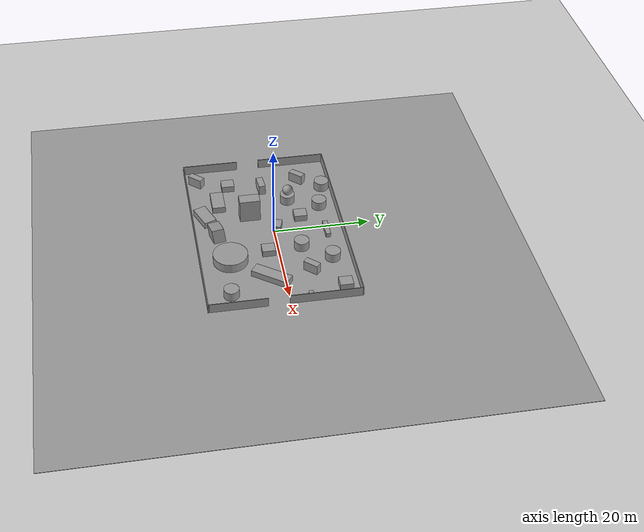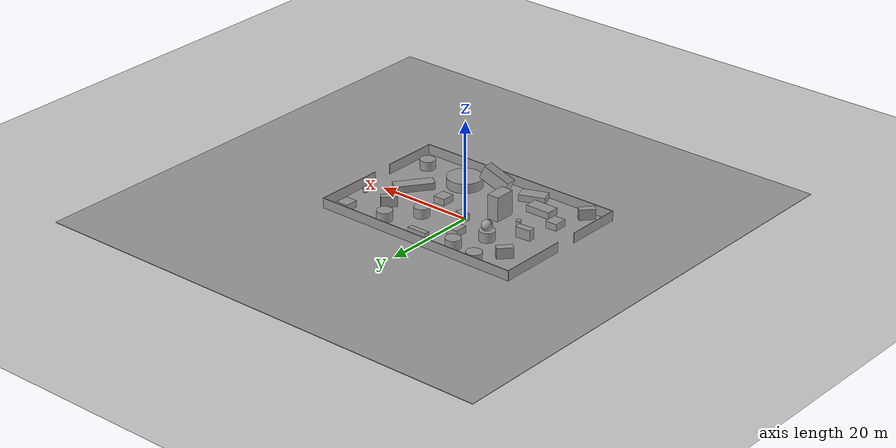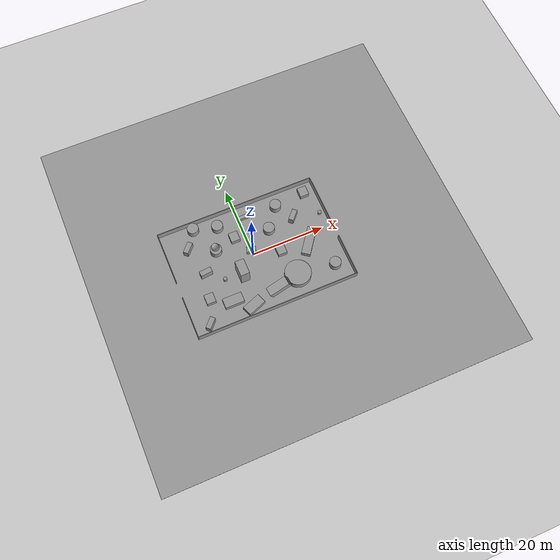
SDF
<sdf version="1.7">
 <world name="default">
  <scene>
   <sky><clouds><speed>12</speed></clouds></sky>
   <ambient>0.4 0.4 0.4 1</ambient>
   <background>0.7 0.7 0.7 1</background>
   <shadows>1</shadows>
  </scene>
  <light name="sun" type="directional">
   <pose>0 0 10 0 -0 0</pose>
   <diffuse>0.8 0.8 0.8 1</diffuse>
   <specular>0.2 0.2 0.2 1</specular>
   <attenuation>
    <range>1000</range>
    <constant>0.9</constant>
    <linear>0.01</linear>
    <quadratic>0.001</quadratic>
   </attenuation>
   <direction>-0.5 0.1 -0.9</direction>
   <spot><inner_angle>0</inner_angle><outer_angle>0</outer_angle><falloff>0</falloff></spot>
  </light>
  <model name="my_ground_plane">
   <static>1</static>
   <link name="link">
    <collision name="collision">
     <geometry><plane><normal>0 0 1</normal><size>100 100</size></plane></geometry>
     <surface><friction><ode><mu>100</mu><mu2>50</mu2></ode></friction></surface>
    </collision>
    <visual name="visual">
     <cast_shadows>0</cast_shadows>
     <geometry><plane><normal>0 0 1</normal><size>100 100</size></plane></geometry>
     <material>
      <script>
       <uri>model://my_ground_plane/materials/scripts</uri>
       <uri>model://my_ground_plane/materials/textures/</uri>
       <name>MyGroundPlane/Image</name>
      </script>
     </material>
    </visual>
   </link>
  </model>
  <atmosphere type="adiabatic"/>
  <physics name="default_physics" default="0" type="ode">
   <ode>
    <solver>
     <type>quick</type>
     <iters>50</iters>
     <sor>1</sor>
     <use_dynamic_moi_rescaling>0</use_dynamic_moi_rescaling>
    </solver>
    <constraints>
     <cfm>0</cfm>
     <erp>0.2</erp>
     <contact_max_correcting_vel>1000</contact_max_correcting_vel>
     <contact_surface_layer>0.001</contact_surface_layer>
    </constraints>
   </ode>
   <max_step_size>0.004</max_step_size>
   <real_time_factor>1</real_time_factor>
   <real_time_update_rate>250</real_time_update_rate>
   <gravity>0 0 -9.8066</gravity>
   <magnetic_field>6.0e-06 2.3e-05 -4.2e-05</magnetic_field>
  </physics>
  <spherical_coordinates>
   <surface_model>EARTH_WGS84</surface_model>
   <latitude_deg>0</latitude_deg>
   <longitude_deg>0</longitude_deg>
   <elevation>0</elevation>
   <heading_deg>0</heading_deg>
  </spherical_coordinates>
  <model name="boxworld">
   <pose>0 0 1.09423 0 -0 0</pose>
   <link name="link_3">
    <inertial>
     <mass>12.2384</mass>
     <inertia><ixx>10.929</ixx><ixy>0</ixy><ixz>0</ixz><iyy>9.61385</iyy><iyz>0</iyz><izz>13.4643</izz></inertia>
    </inertial>
    <pose>-15.234 -7.69159 -0.162787 0 -0 0</pose>
    <visual name="visual">
     <geometry><box><size>2.44054 2.6918 1.86289</size></box></geometry>
     <material>
      <lighting>1</lighting>
      <script><uri>file://media/materials/scripts/gazebo.material</uri><name>Gazebo/Grey</name></script>
      <shader type="pixel"/>
     </material>
    </visual>
    <collision name="collision">
     <geometry><box><size>2.44054 2.6918 1.86289</size></box></geometry>
     <surface>
      <friction>
       <ode><mu>1</mu><mu2>1</mu2><fdir1>0 0 0</fdir1><slip1>0</slip1><slip2>0</slip2></ode>
       <torsional>
        <coefficient>1</coefficient>
        <patch_radius>0</patch_radius>
        <surface_radius>0</surface_radius>
        <use_patch_radius>1</use_patch_radius>
        <ode><slip>0</slip></ode>
       </torsional>
      </friction>
      <bounce><restitution_coefficient>0</restitution_coefficient><threshold>1e+06</threshold></bounce>
      <contact>
       <collide_without_contact>0</collide_without_contact>
       <collide_without_contact_bitmask>1</collide_without_contact_bitmask>
       <collide_bitmask>1</collide_bitmask>
       <ode>
        <soft_cfm>0</soft_cfm>
        <soft_erp>0.2</soft_erp>
        <kp>1e+13</kp>
        <kd>1</kd>
        <max_vel>0.01</max_vel>
        <min_depth>0</min_depth>
       </ode>
       <bullet>
        <split_impulse>1</split_impulse>
        <split_impulse_penetration_threshold>-0.01</split_impulse_penetration_threshold>
        <soft_cfm>0</soft_cfm>
        <soft_erp>0.2</soft_erp>
        <kp>1e+13</kp>
        <kd>1</kd>
       </bullet>
      </contact>
     </surface>
    </collision>
   </link>
   <link name="link_3_clone">
    <inertial>
     <mass>12.2384</mass>
     <inertia><ixx>10.929</ixx><ixy>0</ixy><ixz>0</ixz><iyy>9.61385</iyy><iyz>0</iyz><izz>13.4643</izz></inertia>
    </inertial>
    <pose>-3.00574 6.07353 -0.162787 0 -0 0</pose>
    <visual name="visual">
     <geometry><box><size>2.44054 2.6918 1.86289</size></box></geometry>
     <material>
      <lighting>1</lighting>
      <script><uri>file://media/materials/scripts/gazebo.material</uri><name>Gazebo/Grey</name></script>
      <shader type="pixel"/>
     </material>
    </visual>
    <collision name="collision">
     <geometry><box><size>2.44054 2.6918 1.86289</size></box></geometry>
     <surface>
      <friction>
       <ode><mu>1</mu><mu2>1</mu2><fdir1>0 0 0</fdir1><slip1>0</slip1><slip2>0</slip2></ode>
       <torsional>
        <coefficient>1</coefficient>
        <patch_radius>0</patch_radius>
        <surface_radius>0</surface_radius>
        <use_patch_radius>1</use_patch_radius>
        <ode><slip>0</slip></ode>
       </torsional>
      </friction>
      <bounce><restitution_coefficient>0</restitution_coefficient><threshold>1e+06</threshold></bounce>
      <contact>
       <collide_without_contact>0</collide_without_contact>
       <collide_without_contact_bitmask>1</collide_without_contact_bitmask>
       <collide_bitmask>1</collide_bitmask>
       <ode>
        <soft_cfm>0</soft_cfm>
        <soft_erp>0.2</soft_erp>
        <kp>1e+13</kp>
        <kd>1</kd>
        <max_vel>0.01</max_vel>
        <min_depth>0</min_depth>
       </ode>
       <bullet>
        <split_impulse>1</split_impulse>
        <split_impulse_penetration_threshold>-0.01</split_impulse_penetration_threshold>
        <soft_cfm>0</soft_cfm>
        <soft_erp>0.2</soft_erp>
        <kp>1e+13</kp>
        <kd>1</kd>
       </bullet>
      </contact>
     </surface>
    </collision>
   </link>
   <link name="link_3_clone_0">
    <inertial>
     <mass>37.9067</mass>
     <inertia><ixx>128.058</ixx><ixy>0</ixy><ixz>0</ixz><iyy>123.985</iyy><iyz>0</iyz><izz>41.7037</izz></inertia>
    </inertial>
    <pose>2.22334 -12.1311 2.02429 -1.17864 0.076437 -1.45279</pose>
    <visual name="visual">
     <geometry><box><size>2.44054 2.6918 5.77003</size></box></geometry>
     <material>
      <lighting>1</lighting>
      <script><uri>file://media/materials/scripts/gazebo.material</uri><name>Gazebo/Grey</name></script>
      <shader type="pixel"/>
     </material>
    </visual>
    <collision name="collision">
     <geometry><box><size>2.44054 2.6918 5.77003</size></box></geometry>
     <surface>
      <friction>
       <ode><mu>1</mu><mu2>1</mu2><fdir1>0 0 0</fdir1><slip1>0</slip1><slip2>0</slip2></ode>
       <torsional>
        <coefficient>1</coefficient>
        <patch_radius>0</patch_radius>
        <surface_radius>0</surface_radius>
        <use_patch_radius>1</use_patch_radius>
        <ode><slip>0</slip></ode>
       </torsional>
      </friction>
      <bounce><restitution_coefficient>0</restitution_coefficient><threshold>1e+06</threshold></bounce>
      <contact>
       <collide_without_contact>0</collide_without_contact>
       <collide_without_contact_bitmask>1</collide_without_contact_bitmask>
       <collide_bitmask>1</collide_bitmask>
       <ode>
        <soft_cfm>0</soft_cfm>
        <soft_erp>0.2</soft_erp>
        <kp>1e+13</kp>
        <kd>1</kd>
        <max_vel>0.01</max_vel>
        <min_depth>0</min_depth>
       </ode>
       <bullet>
        <split_impulse>1</split_impulse>
        <split_impulse_penetration_threshold>-0.01</split_impulse_penetration_threshold>
        <soft_cfm>0</soft_cfm>
        <soft_erp>0.2</soft_erp>
        <kp>1e+13</kp>
        <kd>1</kd>
       </bullet>
      </contact>
     </surface>
    </collision>
   </link>
   <link name="link_3_clone_1">
    <inertial>
     <mass>12.2384</mass>
     <inertia><ixx>10.929</ixx><ixy>0</ixy><ixz>0</ixz><iyy>9.61385</iyy><iyz>0</iyz><izz>13.4643</izz></inertia>
    </inertial>
    <pose>19.2747 11.3116 -0.162787 0 -0 0</pose>
    <visual name="visual">
     <geometry><box><size>2.44054 2.6918 1.86289</size></box></geometry>
     <material>
      <lighting>1</lighting>
      <script><uri>file://media/materials/scripts/gazebo.material</uri><name>Gazebo/Grey</name></script>
      <shader type="pixel"/>
     </material>
    </visual>
    <collision name="collision">
     <geometry><box><size>2.44054 2.6918 1.86289</size></box></geometry>
     <surface>
      <friction>
       <ode><mu>1</mu><mu2>1</mu2><fdir1>0 0 0</fdir1><slip1>0</slip1><slip2>0</slip2></ode>
       <torsional>
        <coefficient>1</coefficient>
        <patch_radius>0</patch_radius>
        <surface_radius>0</surface_radius>
        <use_patch_radius>1</use_patch_radius>
        <ode><slip>0</slip></ode>
       </torsional>
      </friction>
      <bounce><restitution_coefficient>0</restitution_coefficient><threshold>1e+06</threshold></bounce>
      <contact>
       <collide_without_contact>0</collide_without_contact>
       <collide_without_contact_bitmask>1</collide_without_contact_bitmask>
       <collide_bitmask>1</collide_bitmask>
       <ode>
        <soft_cfm>0</soft_cfm>
        <soft_erp>0.2</soft_erp>
        <kp>1e+13</kp>
        <kd>1</kd>
        <max_vel>0.01</max_vel>
        <min_depth>0</min_depth>
       </ode>
       <bullet>
        <split_impulse>1</split_impulse>
        <split_impulse_penetration_threshold>-0.01</split_impulse_penetration_threshold>
        <soft_cfm>0</soft_cfm>
        <soft_erp>0.2</soft_erp>
        <kp>1e+13</kp>
        <kd>1</kd>
       </bullet>
      </contact>
     </surface>
    </collision>
   </link>
   <link name="link_3_clone_2">
    <inertial>
     <mass>12.2384</mass>
     <inertia><ixx>10.929</ixx><ixy>0</ixy><ixz>0</ixz><iyy>9.61385</iyy><iyz>0</iyz><izz>13.4643</izz></inertia>
    </inertial>
    <pose>7.03857 -2.20141 -0.162787 0 -0 0</pose>
    <visual name="visual">
     <geometry><box><size>2.44054 2.6918 1.86289</size></box></geometry>
     <material>
      <lighting>1</lighting>
      <script><uri>file://media/materials/scripts/gazebo.material</uri><name>Gazebo/Grey</name></script>
      <shader type="pixel"/>
     </material>
    </visual>
    <collision name="collision">
     <geometry><box><size>2.44054 2.6918 1.86289</size></box></geometry>
     <surface>
      <friction>
       <ode><mu>1</mu><mu2>1</mu2><fdir1>0 0 0</fdir1><slip1>0</slip1><slip2>0</slip2></ode>
       <torsional>
        <coefficient>1</coefficient>
        <patch_radius>0</patch_radius>
        <surface_radius>0</surface_radius>
        <use_patch_radius>1</use_patch_radius>
        <ode><slip>0</slip></ode>
       </torsional>
      </friction>
      <bounce><restitution_coefficient>0</restitution_coefficient><threshold>1e+06</threshold></bounce>
      <contact>
       <collide_without_contact>0</collide_without_contact>
       <collide_without_contact_bitmask>1</collide_without_contact_bitmask>
       <collide_bitmask>1</collide_bitmask>
       <ode>
        <soft_cfm>0</soft_cfm>
        <soft_erp>0.2</soft_erp>
        <kp>1e+13</kp>
        <kd>1</kd>
        <max_vel>0.01</max_vel>
        <min_depth>0</min_depth>
       </ode>
       <bullet>
        <split_impulse>1</split_impulse>
        <split_impulse_penetration_threshold>-0.01</split_impulse_penetration_threshold>
        <soft_cfm>0</soft_cfm>
        <soft_erp>0.2</soft_erp>
        <kp>1e+13</kp>
        <kd>1</kd>
       </bullet>
      </contact>
     </surface>
    </collision>
   </link>
   <link name="link_3_clone_3">
    <inertial>
     <mass>94.8322</mass>
     <inertia><ixx>802.066</ixx><ixy>0</ixy><ixz>0</ixz><iyy>706.05</iyy><iyz>0</iyz><izz>190.157</izz></inertia>
    </inertial>
    <pose>-4.78381 -4.35724 -0.162787 0 -0 0</pose>
    <visual name="visual">
     <geometry><box><size>2.44054 4.25513 9.13164</size></box></geometry>
     <material>
      <lighting>1</lighting>
      <script><uri>file://media/materials/scripts/gazebo.material</uri><name>Gazebo/Grey</name></script>
      <shader type="pixel"/>
     </material>
    </visual>
    <collision name="collision">
     <geometry><box><size>2.44054 4.25513 9.13164</size></box></geometry>
     <surface>
      <friction>
       <ode><mu>1</mu><mu2>1</mu2><fdir1>0 0 0</fdir1><slip1>0</slip1><slip2>0</slip2></ode>
       <torsional>
        <coefficient>1</coefficient>
        <patch_radius>0</patch_radius>
        <surface_radius>0</surface_radius>
        <use_patch_radius>1</use_patch_radius>
        <ode><slip>0</slip></ode>
       </torsional>
      </friction>
      <bounce><restitution_coefficient>0</restitution_coefficient><threshold>1e+06</threshold></bounce>
      <contact>
       <collide_without_contact>0</collide_without_contact>
       <collide_without_contact_bitmask>1</collide_without_contact_bitmask>
       <collide_bitmask>1</collide_bitmask>
       <ode>
        <soft_cfm>0</soft_cfm>
        <soft_erp>0.2</soft_erp>
        <kp>1e+13</kp>
        <kd>1</kd>
        <max_vel>0.01</max_vel>
        <min_depth>0</min_depth>
       </ode>
       <bullet>
        <split_impulse>1</split_impulse>
        <split_impulse_penetration_threshold>-0.01</split_impulse_penetration_threshold>
        <soft_cfm>0</soft_cfm>
        <soft_erp>0.2</soft_erp>
        <kp>1e+13</kp>
        <kd>1</kd>
       </bullet>
      </contact>
     </surface>
    </collision>
   </link>
   <link name="link_3_clone_4">
    <inertial>
     <mass>36.0257</mass>
     <inertia><ixx>198.91</ixx><ixy>0</ixy><ixz>0</ixz><iyy>28.2999</iyy><iyz>0</iyz><izz>206.373</izz></inertia>
    </inertial>
    <pose>14.8858 -2.72576 -0.162787 0 0 -0.632937</pose>
    <visual name="visual">
     <geometry><box><size>2.44054 7.92374 1.86289</size></box></geometry>
     <material>
      <lighting>1</lighting>
      <script><uri>file://media/materials/scripts/gazebo.material</uri><name>Gazebo/Grey</name></script>
      <shader type="pixel"/>
     </material>
    </visual>
    <collision name="collision">
     <geometry><box><size>2.44054 7.92374 1.86289</size></box></geometry>
     <surface>
      <friction>
       <ode><mu>1</mu><mu2>1</mu2><fdir1>0 0 0</fdir1><slip1>0</slip1><slip2>0</slip2></ode>
       <torsional>
        <coefficient>1</coefficient>
        <patch_radius>0</patch_radius>
        <surface_radius>0</surface_radius>
        <use_patch_radius>1</use_patch_radius>
        <ode><slip>0</slip></ode>
       </torsional>
      </friction>
      <bounce><restitution_coefficient>0</restitution_coefficient><threshold>1e+06</threshold></bounce>
      <contact>
       <collide_without_contact>0</collide_without_contact>
       <collide_without_contact_bitmask>1</collide_without_contact_bitmask>
       <collide_bitmask>1</collide_bitmask>
       <ode>
        <soft_cfm>0</soft_cfm>
        <soft_erp>0.2</soft_erp>
        <kp>1e+13</kp>
        <kd>1</kd>
        <max_vel>0.01</max_vel>
        <min_depth>0</min_depth>
       </ode>
       <bullet>
        <split_impulse>1</split_impulse>
        <split_impulse_penetration_threshold>-0.01</split_impulse_penetration_threshold>
        <soft_cfm>0</soft_cfm>
        <soft_erp>0.2</soft_erp>
        <kp>1e+13</kp>
        <kd>1</kd>
       </bullet>
      </contact>
     </surface>
    </collision>
   </link>
   <link name="link_3_clone_5">
    <inertial>
     <mass>26.0923</mass>
     <inertia><ixx>23.3007</ixx><ixy>0</ixy><ixz>0</ixz><iyy>66.4136</iyy><iyz>0</iyz><izz>74.6227</izz></inertia>
    </inertial>
    <pose>-9.84642 -10.4814 -0.162787 0 -0 0</pose>
    <visual name="visual">
     <geometry><box><size>5.20323 2.6918 1.86289</size></box></geometry>
     <material>
      <lighting>1</lighting>
      <script><uri>file://media/materials/scripts/gazebo.material</uri><name>Gazebo/Grey</name></script>
      <shader type="pixel"/>
     </material>
    </visual>
    <collision name="collision">
     <geometry><box><size>5.20323 2.6918 1.86289</size></box></geometry>
     <surface>
      <friction>
       <ode><mu>1</mu><mu2>1</mu2><fdir1>0 0 0</fdir1><slip1>0</slip1><slip2>0</slip2></ode>
       <torsional>
        <coefficient>1</coefficient>
        <patch_radius>0</patch_radius>
        <surface_radius>0</surface_radius>
        <use_patch_radius>1</use_patch_radius>
        <ode><slip>0</slip></ode>
       </torsional>
      </friction>
      <bounce><restitution_coefficient>0</restitution_coefficient><threshold>1e+06</threshold></bounce>
      <contact>
       <collide_without_contact>0</collide_without_contact>
       <collide_without_contact_bitmask>1</collide_without_contact_bitmask>
       <collide_bitmask>1</collide_bitmask>
       <ode>
        <soft_cfm>0</soft_cfm>
        <soft_erp>0.2</soft_erp>
        <kp>1e+13</kp>
        <kd>1</kd>
        <max_vel>0.01</max_vel>
        <min_depth>0</min_depth>
       </ode>
       <bullet>
        <split_impulse>1</split_impulse>
        <split_impulse_penetration_threshold>-0.01</split_impulse_penetration_threshold>
        <soft_cfm>0</soft_cfm>
        <soft_erp>0.2</soft_erp>
        <kp>1e+13</kp>
        <kd>1</kd>
       </bullet>
      </contact>
     </surface>
    </collision>
   </link>
   <link name="link_3_clone_5_clone">
    <inertial>
     <mass>26.0923</mass>
     <inertia><ixx>23.3007</ixx><ixy>0</ixy><ixz>0</ixz><iyy>66.4136</iyy><iyz>0</iyz><izz>74.6227</izz></inertia>
    </inertial>
    <pose>-5.39487 -13.6975 -0.162787 0 -0 0.368475</pose>
    <visual name="visual">
     <geometry><box><size>5.20323 2.6918 1.86289</size></box></geometry>
     <material>
      <lighting>1</lighting>
      <script><uri>file://media/materials/scripts/gazebo.material</uri><name>Gazebo/Grey</name></script>
      <shader type="pixel"/>
     </material>
    </visual>
    <collision name="collision">
     <geometry><box><size>5.20323 2.6918 1.86289</size></box></geometry>
     <surface>
      <friction>
       <ode><mu>1</mu><mu2>1</mu2><fdir1>0 0 0</fdir1><slip1>0</slip1><slip2>0</slip2></ode>
       <torsional>
        <coefficient>1</coefficient>
        <patch_radius>0</patch_radius>
        <surface_radius>0</surface_radius>
        <use_patch_radius>1</use_patch_radius>
        <ode><slip>0</slip></ode>
       </torsional>
      </friction>
      <bounce><restitution_coefficient>0</restitution_coefficient><threshold>1e+06</threshold></bounce>
      <contact>
       <collide_without_contact>0</collide_without_contact>
       <collide_without_contact_bitmask>1</collide_without_contact_bitmask>
       <collide_bitmask>1</collide_bitmask>
       <ode>
        <soft_cfm>0</soft_cfm>
        <soft_erp>0.2</soft_erp>
        <kp>1e+13</kp>
        <kd>1</kd>
        <max_vel>0.01</max_vel>
        <min_depth>0</min_depth>
       </ode>
       <bullet>
        <split_impulse>1</split_impulse>
        <split_impulse_penetration_threshold>-0.01</split_impulse_penetration_threshold>
        <soft_cfm>0</soft_cfm>
        <soft_erp>0.2</soft_erp>
        <kp>1e+13</kp>
        <kd>1</kd>
       </bullet>
      </contact>
     </surface>
    </collision>
   </link>
   <link name="link_3_clone_clone">
    <inertial>
     <mass>6.77811</mass>
     <inertia><ixx>3.21561</ixx><ixy>0</ixy><ixz>0</ixz><iyy>5.32454</iyy><iyz>0</iyz><izz>4.61974</izz></inertia>
    </inertial>
    <pose>-0.21055 0.914889 -0.162787 0 0 -0.310202</pose>
    <visual name="visual">
     <geometry><box><size>2.44054 1.49083 1.86289</size></box></geometry>
     <material>
      <lighting>1</lighting>
      <script><uri>file://media/materials/scripts/gazebo.material</uri><name>Gazebo/Grey</name></script>
      <shader type="pixel"/>
     </material>
    </visual>
    <collision name="collision">
     <geometry><box><size>2.44054 1.49083 1.86289</size></box></geometry>
     <surface>
      <friction>
       <ode><mu>1</mu><mu2>1</mu2><fdir1>0 0 0</fdir1><slip1>0</slip1><slip2>0</slip2></ode>
       <torsional>
        <coefficient>1</coefficient>
        <patch_radius>0</patch_radius>
        <surface_radius>0</surface_radius>
        <use_patch_radius>1</use_patch_radius>
        <ode><slip>0</slip></ode>
       </torsional>
      </friction>
      <bounce><restitution_coefficient>0</restitution_coefficient><threshold>1e+06</threshold></bounce>
      <contact>
       <collide_without_contact>0</collide_without_contact>
       <collide_without_contact_bitmask>1</collide_without_contact_bitmask>
       <collide_bitmask>1</collide_bitmask>
       <ode>
        <soft_cfm>0</soft_cfm>
        <soft_erp>0.2</soft_erp>
        <kp>1e+13</kp>
        <kd>1</kd>
        <max_vel>0.01</max_vel>
        <min_depth>0</min_depth>
       </ode>
       <bullet>
        <split_impulse>1</split_impulse>
        <split_impulse_penetration_threshold>-0.01</split_impulse_penetration_threshold>
        <soft_cfm>0</soft_cfm>
        <soft_erp>0.2</soft_erp>
        <kp>1e+13</kp>
        <kd>1</kd>
       </bullet>
      </contact>
     </surface>
    </collision>
   </link>
   <link name="link_4">
    <inertial>
     <mass>28.7016</mass>
     <inertia><ixx>38.922</ixx><ixy>0</ixy><ixz>0</ixz><iyy>38.922</iyy><iyz>0</iyz><izz>34.0219</izz></inertia>
    </inertial>
    <pose>-8.89013 4.32744 -0.162787 0 -0 0</pose>
    <visual name="visual">
     <geometry><cylinder><radius>1.53972</radius><length>3.02669</length></cylinder></geometry>
     <material>
      <lighting>1</lighting>
      <script><uri>file://media/materials/scripts/gazebo.material</uri><name>Gazebo/Grey</name></script>
      <shader type="pixel"/>
     </material>
    </visual>
    <collision name="collision">
     <geometry><cylinder><radius>1.53972</radius><length>3.02669</length></cylinder></geometry>
     <surface>
      <friction>
       <ode><mu>1</mu><mu2>1</mu2><fdir1>0 0 0</fdir1><slip1>0</slip1><slip2>0</slip2></ode>
       <torsional>
        <coefficient>1</coefficient>
        <patch_radius>0</patch_radius>
        <surface_radius>0</surface_radius>
        <use_patch_radius>1</use_patch_radius>
        <ode><slip>0</slip></ode>
       </torsional>
      </friction>
      <bounce><restitution_coefficient>0</restitution_coefficient><threshold>1e+06</threshold></bounce>
      <contact>
       <collide_without_contact>0</collide_without_contact>
       <collide_without_contact_bitmask>1</collide_without_contact_bitmask>
       <collide_bitmask>1</collide_bitmask>
       <ode>
        <soft_cfm>0</soft_cfm>
        <soft_erp>0.2</soft_erp>
        <kp>1e+13</kp>
        <kd>1</kd>
        <max_vel>0.01</max_vel>
        <min_depth>0</min_depth>
       </ode>
       <bullet>
        <split_impulse>1</split_impulse>
        <split_impulse_penetration_threshold>-0.01</split_impulse_penetration_threshold>
        <soft_cfm>0</soft_cfm>
        <soft_erp>0.2</soft_erp>
        <kp>1e+13</kp>
        <kd>1</kd>
       </bullet>
      </contact>
     </surface>
    </collision>
   </link>
   <link name="link_4_clone">
    <inertial>
     <mass>28.7016</mass>
     <inertia><ixx>38.922</ixx><ixy>0</ixy><ixz>0</ixz><iyy>38.922</iyy><iyz>0</iyz><izz>34.0219</izz></inertia>
    </inertial>
    <pose>18.677 -11.2451 -0.162787 0 -0 0</pose>
    <visual name="visual">
     <geometry><cylinder><radius>1.53972</radius><length>3.02669</length></cylinder></geometry>
     <material>
      <lighting>1</lighting>
      <script><uri>file://media/materials/scripts/gazebo.material</uri><name>Gazebo/Grey</name></script>
      <shader type="pixel"/>
     </material>
    </visual>
    <collision name="collision">
     <geometry><cylinder><radius>1.53972</radius><length>3.02669</length></cylinder></geometry>
     <surface>
      <friction>
       <ode><mu>1</mu><mu2>1</mu2><fdir1>0 0 0</fdir1><slip1>0</slip1><slip2>0</slip2></ode>
       <torsional>
        <coefficient>1</coefficient>
        <patch_radius>0</patch_radius>
        <surface_radius>0</surface_radius>
        <use_patch_radius>1</use_patch_radius>
        <ode><slip>0</slip></ode>
       </torsional>
      </friction>
      <bounce><restitution_coefficient>0</restitution_coefficient><threshold>1e+06</threshold></bounce>
      <contact>
       <collide_without_contact>0</collide_without_contact>
       <collide_without_contact_bitmask>1</collide_without_contact_bitmask>
       <collide_bitmask>1</collide_bitmask>
       <ode>
        <soft_cfm>0</soft_cfm>
        <soft_erp>0.2</soft_erp>
        <kp>1e+13</kp>
        <kd>1</kd>
        <max_vel>0.01</max_vel>
        <min_depth>0</min_depth>
       </ode>
       <bullet>
        <split_impulse>1</split_impulse>
        <split_impulse_penetration_threshold>-0.01</split_impulse_penetration_threshold>
        <soft_cfm>0</soft_cfm>
        <soft_erp>0.2</soft_erp>
        <kp>1e+13</kp>
        <kd>1</kd>
       </bullet>
      </contact>
     </surface>
    </collision>
   </link>
   <link name="link_4_clone_0">
    <inertial>
     <mass>28.7016</mass>
     <inertia><ixx>38.922</ixx><ixy>0</ixy><ixz>0</ixz><iyy>38.922</iyy><iyz>0</iyz><izz>34.0219</izz></inertia>
    </inertial>
    <pose>6.44948 4.7317 -0.162787 0 -0 0</pose>
    <visual name="visual">
     <geometry><cylinder><radius>1.53972</radius><length>3.02669</length></cylinder></geometry>
     <material>
      <lighting>1</lighting>
      <script><uri>file://media/materials/scripts/gazebo.material</uri><name>Gazebo/Grey</name></script>
      <shader type="pixel"/>
     </material>
    </visual>
    <collision name="collision">
     <geometry><cylinder><radius>1.53972</radius><length>3.02669</length></cylinder></geometry>
     <surface>
      <friction>
       <ode><mu>1</mu><mu2>1</mu2><fdir1>0 0 0</fdir1><slip1>0</slip1><slip2>0</slip2></ode>
       <torsional>
        <coefficient>1</coefficient>
        <patch_radius>0</patch_radius>
        <surface_radius>0</surface_radius>
        <use_patch_radius>1</use_patch_radius>
        <ode><slip>0</slip></ode>
       </torsional>
      </friction>
      <bounce><restitution_coefficient>0</restitution_coefficient><threshold>1e+06</threshold></bounce>
      <contact>
       <collide_without_contact>0</collide_without_contact>
       <collide_without_contact_bitmask>1</collide_without_contact_bitmask>
       <collide_bitmask>1</collide_bitmask>
       <ode>
        <soft_cfm>0</soft_cfm>
        <soft_erp>0.2</soft_erp>
        <kp>1e+13</kp>
        <kd>1</kd>
        <max_vel>0.01</max_vel>
        <min_depth>0</min_depth>
       </ode>
       <bullet>
        <split_impulse>1</split_impulse>
        <split_impulse_penetration_threshold>-0.01</split_impulse_penetration_threshold>
        <soft_cfm>0</soft_cfm>
        <soft_erp>0.2</soft_erp>
        <kp>1e+13</kp>
        <kd>1</kd>
       </bullet>
      </contact>
     </surface>
    </collision>
   </link>
   <link name="link_4_clone_1">
    <inertial>
     <mass>28.7016</mass>
     <inertia><ixx>38.922</ixx><ixy>0</ixy><ixz>0</ixz><iyy>38.922</iyy><iyz>0</iyz><izz>34.0219</izz></inertia>
    </inertial>
    <pose>-12.3911 12.34 -0.162787 0 -0 0</pose>
    <visual name="visual">
     <geometry><cylinder><radius>1.53972</radius><length>3.02669</length></cylinder></geometry>
     <material>
      <lighting>1</lighting>
      <script><uri>file://media/materials/scripts/gazebo.material</uri><name>Gazebo/Grey</name></script>
      <shader type="pixel"/>
     </material>
    </visual>
    <collision name="collision">
     <geometry><cylinder><radius>1.53972</radius><length>3.02669</length></cylinder></geometry>
     <surface>
      <friction>
       <ode><mu>1</mu><mu2>1</mu2><fdir1>0 0 0</fdir1><slip1>0</slip1><slip2>0</slip2></ode>
       <torsional>
        <coefficient>1</coefficient>
        <patch_radius>0</patch_radius>
        <surface_radius>0</surface_radius>
        <use_patch_radius>1</use_patch_radius>
        <ode><slip>0</slip></ode>
       </torsional>
      </friction>
      <bounce><restitution_coefficient>0</restitution_coefficient><threshold>1e+06</threshold></bounce>
      <contact>
       <collide_without_contact>0</collide_without_contact>
       <collide_without_contact_bitmask>1</collide_without_contact_bitmask>
       <collide_bitmask>1</collide_bitmask>
       <ode>
        <soft_cfm>0</soft_cfm>
        <soft_erp>0.2</soft_erp>
        <kp>1e+13</kp>
        <kd>1</kd>
        <max_vel>0.01</max_vel>
        <min_depth>0</min_depth>
       </ode>
       <bullet>
        <split_impulse>1</split_impulse>
        <split_impulse_penetration_threshold>-0.01</split_impulse_penetration_threshold>
        <soft_cfm>0</soft_cfm>
        <soft_erp>0.2</soft_erp>
        <kp>1e+13</kp>
        <kd>1</kd>
       </bullet>
      </contact>
     </surface>
    </collision>
   </link>
   <link name="link_4_clone_2">
    <inertial>
     <mass>28.7016</mass>
     <inertia><ixx>38.922</ixx><ixy>0</ixy><ixz>0</ixz><iyy>38.922</iyy><iyz>0</iyz><izz>34.0219</izz></inertia>
    </inertial>
    <pose>-6.06344 10.6507 -0.162787 0 -0 0</pose>
    <visual name="visual">
     <geometry><cylinder><radius>1.53972</radius><length>3.02669</length></cylinder></geometry>
     <material>
      <lighting>1</lighting>
      <script><uri>file://media/materials/scripts/gazebo.material</uri><name>Gazebo/Grey</name></script>
      <shader type="pixel"/>
     </material>
    </visual>
    <collision name="collision">
     <geometry><cylinder><radius>1.53972</radius><length>3.02669</length></cylinder></geometry>
     <surface>
      <friction>
       <ode><mu>1</mu><mu2>1</mu2><fdir1>0 0 0</fdir1><slip1>0</slip1><slip2>0</slip2></ode>
       <torsional>
        <coefficient>1</coefficient>
        <patch_radius>0</patch_radius>
        <surface_radius>0</surface_radius>
        <use_patch_radius>1</use_patch_radius>
        <ode><slip>0</slip></ode>
       </torsional>
      </friction>
      <bounce><restitution_coefficient>0</restitution_coefficient><threshold>1e+06</threshold></bounce>
      <contact>
       <collide_without_contact>0</collide_without_contact>
       <collide_without_contact_bitmask>1</collide_without_contact_bitmask>
       <collide_bitmask>1</collide_bitmask>
       <ode>
        <soft_cfm>0</soft_cfm>
        <soft_erp>0.2</soft_erp>
        <kp>1e+13</kp>
        <kd>1</kd>
        <max_vel>0.01</max_vel>
        <min_depth>0</min_depth>
       </ode>
       <bullet>
        <split_impulse>1</split_impulse>
        <split_impulse_penetration_threshold>-0.01</split_impulse_penetration_threshold>
        <soft_cfm>0</soft_cfm>
        <soft_erp>0.2</soft_erp>
        <kp>1e+13</kp>
        <kd>1</kd>
       </bullet>
      </contact>
     </surface>
    </collision>
   </link>
   <link name="link_4_clone_3">
    <inertial>
     <mass>28.7016</mass>
     <inertia><ixx>38.922</ixx><ixy>0</ixy><ixz>0</ixz><iyy>38.922</iyy><iyz>0</iyz><izz>34.0219</izz></inertia>
    </inertial>
    <pose>10.6973 10.364 -0.162787 0 -0 0</pose>
    <visual name="visual">
     <geometry><cylinder><radius>1.53972</radius><length>3.02669</length></cylinder></geometry>
     <material>
      <lighting>1</lighting>
      <script><uri>file://media/materials/scripts/gazebo.material</uri><name>Gazebo/Grey</name></script>
      <shader type="pixel"/>
     </material>
    </visual>
    <collision name="collision">
     <geometry><cylinder><radius>1.53972</radius><length>3.02669</length></cylinder></geometry>
     <surface>
      <friction>
       <ode><mu>1</mu><mu2>1</mu2><fdir1>0 0 0</fdir1><slip1>0</slip1><slip2>0</slip2></ode>
       <torsional>
        <coefficient>1</coefficient>
        <patch_radius>0</patch_radius>
        <surface_radius>0</surface_radius>
        <use_patch_radius>1</use_patch_radius>
        <ode><slip>0</slip></ode>
       </torsional>
      </friction>
      <bounce><restitution_coefficient>0</restitution_coefficient><threshold>1e+06</threshold></bounce>
      <contact>
       <collide_without_contact>0</collide_without_contact>
       <collide_without_contact_bitmask>1</collide_without_contact_bitmask>
       <collide_bitmask>1</collide_bitmask>
       <ode>
        <soft_cfm>0</soft_cfm>
        <soft_erp>0.2</soft_erp>
        <kp>1e+13</kp>
        <kd>1</kd>
        <max_vel>0.01</max_vel>
        <min_depth>0</min_depth>
       </ode>
       <bullet>
        <split_impulse>1</split_impulse>
        <split_impulse_penetration_threshold>-0.01</split_impulse_penetration_threshold>
        <soft_cfm>0</soft_cfm>
        <soft_erp>0.2</soft_erp>
        <kp>1e+13</kp>
        <kd>1</kd>
       </bullet>
      </contact>
     </surface>
    </collision>
   </link>
   <link name="link_4_clone_4">
    <inertial>
     <mass>151.393</mass>
     <inertia><ixx>588.869</ixx><ixy>0</ixy><ixz>0</ixz><iyy>588.869</iyy><iyz>0</iyz><izz>946.59</izz></inertia>
    </inertial>
    <pose>8.43797 -10.1197 -0.162787 0 -0 0</pose>
    <visual name="visual">
     <geometry><cylinder><radius>3.53625</radius><length>3.02669</length></cylinder></geometry>
     <material>
      <lighting>1</lighting>
      <script><uri>file://media/materials/scripts/gazebo.material</uri><name>Gazebo/Grey</name></script>
      <shader type="pixel"/>
     </material>
    </visual>
    <collision name="collision">
     <geometry><cylinder><radius>3.53625</radius><length>3.02669</length></cylinder></geometry>
     <surface>
      <friction>
       <ode><mu>1</mu><mu2>1</mu2><fdir1>0 0 0</fdir1><slip1>0</slip1><slip2>0</slip2></ode>
       <torsional>
        <coefficient>1</coefficient>
        <patch_radius>0</patch_radius>
        <surface_radius>0</surface_radius>
        <use_patch_radius>1</use_patch_radius>
        <ode><slip>0</slip></ode>
       </torsional>
      </friction>
      <bounce><restitution_coefficient>0</restitution_coefficient><threshold>1e+06</threshold></bounce>
      <contact>
       <collide_without_contact>0</collide_without_contact>
       <collide_without_contact_bitmask>1</collide_without_contact_bitmask>
       <collide_bitmask>1</collide_bitmask>
       <ode>
        <soft_cfm>0</soft_cfm>
        <soft_erp>0.2</soft_erp>
        <kp>1e+13</kp>
        <kd>1</kd>
        <max_vel>0.01</max_vel>
        <min_depth>0</min_depth>
       </ode>
       <bullet>
        <split_impulse>1</split_impulse>
        <split_impulse_penetration_threshold>-0.01</split_impulse_penetration_threshold>
        <soft_cfm>0</soft_cfm>
        <soft_erp>0.2</soft_erp>
        <kp>1e+13</kp>
        <kd>1</kd>
       </bullet>
      </contact>
     </surface>
    </collision>
   </link>
   <link name="link_5">
    <inertial>
     <mass>10.2536</mass>
     <inertia><ixx>4.83938</ixx><ixy>0</ixy><ixz>0</ixz><iyy>4.83938</iyy><iyz>0</iyz><izz>4.83938</izz></inertia>
    </inertial>
    <pose>-8.88559 4.41587 2.38259 0 -0 0</pose>
    <visual name="visual">
     <geometry><sphere><radius>1.08624</radius></sphere></geometry>
     <material>
      <lighting>1</lighting>
      <script><uri>file://media/materials/scripts/gazebo.material</uri><name>Gazebo/Grey</name></script>
      <shader type="pixel"/>
     </material>
    </visual>
    <collision name="collision">
     <geometry><sphere><radius>1.08624</radius></sphere></geometry>
     <surface>
      <friction>
       <ode><mu>1</mu><mu2>1</mu2><fdir1>0 0 0</fdir1><slip1>0</slip1><slip2>0</slip2></ode>
       <torsional>
        <coefficient>1</coefficient>
        <patch_radius>0</patch_radius>
        <surface_radius>0</surface_radius>
        <use_patch_radius>1</use_patch_radius>
        <ode><slip>0</slip></ode>
       </torsional>
      </friction>
      <bounce><restitution_coefficient>0</restitution_coefficient><threshold>1e+06</threshold></bounce>
      <contact>
       <collide_without_contact>0</collide_without_contact>
       <collide_without_contact_bitmask>1</collide_without_contact_bitmask>
       <collide_bitmask>1</collide_bitmask>
       <ode>
        <soft_cfm>0</soft_cfm>
        <soft_erp>0.2</soft_erp>
        <kp>1e+13</kp>
        <kd>1</kd>
        <max_vel>0.01</max_vel>
        <min_depth>0</min_depth>
       </ode>
       <bullet>
        <split_impulse>1</split_impulse>
        <split_impulse_penetration_threshold>-0.01</split_impulse_penetration_threshold>
        <soft_cfm>0</soft_cfm>
        <soft_erp>0.2</soft_erp>
        <kp>1e+13</kp>
        <kd>1</kd>
       </bullet>
      </contact>
     </surface>
    </collision>
   </link>
   <link name="link_6">
    <inertial>
     <mass>4.24242</mass>
     <inertia><ixx>0.70707</ixx><ixy>0</ixy><ixz>0</ixz><iyy>6.71651</iyy><iyz>0</iyz><izz>6.71651</izz></inertia>
    </inertial>
    <pose>2.13448 10.747 -0.162787 0 -0 0</pose>
    <visual name="visual">
     <geometry><box><size>4.24242 1 1</size></box></geometry>
     <material>
      <lighting>1</lighting>
      <script><uri>file://media/materials/scripts/gazebo.material</uri><name>Gazebo/Grey</name></script>
      <shader type="pixel"/>
     </material>
    </visual>
    <collision name="collision">
     <geometry><box><size>4.24242 1 1</size></box></geometry>
     <surface>
      <friction>
       <ode><mu>1</mu><mu2>1</mu2><fdir1>0 0 0</fdir1><slip1>0</slip1><slip2>0</slip2></ode>
       <torsional>
        <coefficient>1</coefficient>
        <patch_radius>0</patch_radius>
        <surface_radius>0</surface_radius>
        <use_patch_radius>1</use_patch_radius>
        <ode><slip>0</slip></ode>
       </torsional>
      </friction>
      <bounce><restitution_coefficient>0</restitution_coefficient><threshold>1e+06</threshold></bounce>
      <contact>
       <collide_without_contact>0</collide_without_contact>
       <collide_without_contact_bitmask>1</collide_without_contact_bitmask>
       <collide_bitmask>1</collide_bitmask>
       <ode>
        <soft_cfm>0</soft_cfm>
        <soft_erp>0.2</soft_erp>
        <kp>1e+13</kp>
        <kd>1</kd>
        <max_vel>0.01</max_vel>
        <min_depth>0</min_depth>
       </ode>
       <bullet>
        <split_impulse>1</split_impulse>
        <split_impulse_penetration_threshold>-0.01</split_impulse_penetration_threshold>
        <soft_cfm>0</soft_cfm>
        <soft_erp>0.2</soft_erp>
        <kp>1e+13</kp>
        <kd>1</kd>
       </bullet>
      </contact>
     </surface>
    </collision>
   </link>
   <link name="link_7">
    <inertial>
     <mass>14.7957</mass>
     <inertia><ixx>16.4388</ixx><ixy>0</ixy><ixz>0</ixz><iyy>26.5114</iyy><iyz>0</iyz><izz>14.7619</izz></inertia>
    </inertial>
    <pose>-15.5379 7.53388 -0.162787 0 -0 0.826842</pose>
    <visual name="visual">
     <geometry><box><size>3.17349 1.37898 3.38098</size></box></geometry>
     <material>
      <lighting>1</lighting>
      <script><uri>file://media/materials/scripts/gazebo.material</uri><name>Gazebo/Grey</name></script>
      <shader type="pixel"/>
     </material>
    </visual>
    <collision name="collision">
     <geometry><box><size>3.17349 1.37898 3.38098</size></box></geometry>
     <surface>
      <friction>
       <ode><mu>1</mu><mu2>1</mu2><fdir1>0 0 0</fdir1><slip1>0</slip1><slip2>0</slip2></ode>
       <torsional>
        <coefficient>1</coefficient>
        <patch_radius>0</patch_radius>
        <surface_radius>0</surface_radius>
        <use_patch_radius>1</use_patch_radius>
        <ode><slip>0</slip></ode>
       </torsional>
      </friction>
      <bounce><restitution_coefficient>0</restitution_coefficient><threshold>1e+06</threshold></bounce>
      <contact>
       <collide_without_contact>0</collide_without_contact>
       <collide_without_contact_bitmask>1</collide_without_contact_bitmask>
       <collide_bitmask>1</collide_bitmask>
       <ode>
        <soft_cfm>0</soft_cfm>
        <soft_erp>0.2</soft_erp>
        <kp>1e+13</kp>
        <kd>1</kd>
        <max_vel>0.01</max_vel>
        <min_depth>0</min_depth>
       </ode>
       <bullet>
        <split_impulse>1</split_impulse>
        <split_impulse_penetration_threshold>-0.01</split_impulse_penetration_threshold>
        <soft_cfm>0</soft_cfm>
        <soft_erp>0.2</soft_erp>
        <kp>1e+13</kp>
        <kd>1</kd>
       </bullet>
      </contact>
     </surface>
    </collision>
   </link>
   <link name="link_7_clone">
    <inertial>
     <mass>14.7957</mass>
     <inertia><ixx>16.4388</ixx><ixy>0</ixy><ixz>0</ixz><iyy>26.5114</iyy><iyz>0</iyz><izz>14.7619</izz></inertia>
    </inertial>
    <pose>-17.5295 -14.1669 -0.162787 0 -0 0.826842</pose>
    <visual name="visual">
     <geometry><box><size>3.17349 1.37898 3.38098</size></box></geometry>
     <material>
      <lighting>1</lighting>
      <script><uri>file://media/materials/scripts/gazebo.material</uri><name>Gazebo/Grey</name></script>
      <shader type="pixel"/>
     </material>
    </visual>
    <collision name="collision">
     <geometry><box><size>3.17349 1.37898 3.38098</size></box></geometry>
     <surface>
      <friction>
       <ode><mu>1</mu><mu2>1</mu2><fdir1>0 0 0</fdir1><slip1>0</slip1><slip2>0</slip2></ode>
       <torsional>
        <coefficient>1</coefficient>
        <patch_radius>0</patch_radius>
        <surface_radius>0</surface_radius>
        <use_patch_radius>1</use_patch_radius>
        <ode><slip>0</slip></ode>
       </torsional>
      </friction>
      <bounce><restitution_coefficient>0</restitution_coefficient><threshold>1e+06</threshold></bounce>
      <contact>
       <collide_without_contact>0</collide_without_contact>
       <collide_without_contact_bitmask>1</collide_without_contact_bitmask>
       <collide_bitmask>1</collide_bitmask>
       <ode>
        <soft_cfm>0</soft_cfm>
        <soft_erp>0.2</soft_erp>
        <kp>1e+13</kp>
        <kd>1</kd>
        <max_vel>0.01</max_vel>
        <min_depth>0</min_depth>
       </ode>
       <bullet>
        <split_impulse>1</split_impulse>
        <split_impulse_penetration_threshold>-0.01</split_impulse_penetration_threshold>
        <soft_cfm>0</soft_cfm>
        <soft_erp>0.2</soft_erp>
        <kp>1e+13</kp>
        <kd>1</kd>
       </bullet>
      </contact>
     </surface>
    </collision>
   </link>
   <link name="link_7_clone_0">
    <inertial>
     <mass>14.7957</mass>
     <inertia><ixx>16.4388</ixx><ixy>0</ixy><ixz>0</ixz><iyy>26.5114</iyy><iyz>0</iyz><izz>14.7619</izz></inertia>
    </inertial>
    <pose>-13.6168 -0.670898 -0.162787 0 -0 0.075907</pose>
    <visual name="visual">
     <geometry><box><size>3.17349 1.37898 3.38098</size></box></geometry>
     <material>
      <lighting>1</lighting>
      <script><uri>file://media/materials/scripts/gazebo.material</uri><name>Gazebo/Grey</name></script>
      <shader type="pixel"/>
     </material>
    </visual>
    <collision name="collision">
     <geometry><box><size>3.17349 1.37898 3.38098</size></box></geometry>
     <surface>
      <friction>
       <ode><mu>1</mu><mu2>1</mu2><fdir1>0 0 0</fdir1><slip1>0</slip1><slip2>0</slip2></ode>
       <torsional>
        <coefficient>1</coefficient>
        <patch_radius>0</patch_radius>
        <surface_radius>0</surface_radius>
        <use_patch_radius>1</use_patch_radius>
        <ode><slip>0</slip></ode>
       </torsional>
      </friction>
      <bounce><restitution_coefficient>0</restitution_coefficient><threshold>1e+06</threshold></bounce>
      <contact>
       <collide_without_contact>0</collide_without_contact>
       <collide_without_contact_bitmask>1</collide_without_contact_bitmask>
       <collide_bitmask>1</collide_bitmask>
       <ode>
        <soft_cfm>0</soft_cfm>
        <soft_erp>0.2</soft_erp>
        <kp>1e+13</kp>
        <kd>1</kd>
        <max_vel>0.01</max_vel>
        <min_depth>0</min_depth>
       </ode>
       <bullet>
        <split_impulse>1</split_impulse>
        <split_impulse_penetration_threshold>-0.01</split_impulse_penetration_threshold>
        <soft_cfm>0</soft_cfm>
        <soft_erp>0.2</soft_erp>
        <kp>1e+13</kp>
        <kd>1</kd>
       </bullet>
      </contact>
     </surface>
    </collision>
   </link>
   <link name="link_7_clone_clone">
    <inertial>
     <mass>14.7957</mass>
     <inertia><ixx>16.4388</ixx><ixy>0</ixy><ixz>0</ixz><iyy>26.5114</iyy><iyz>0</iyz><izz>14.7619</izz></inertia>
    </inertial>
    <pose>13.8026 5.55441 -0.162787 0 -0 0.826842</pose>
    <visual name="visual">
     <geometry><box><size>3.17349 1.37898 3.38098</size></box></geometry>
     <material>
      <lighting>1</lighting>
      <script><uri>file://media/materials/scripts/gazebo.material</uri><name>Gazebo/Grey</name></script>
      <shader type="pixel"/>
     </material>
    </visual>
    <collision name="collision">
     <geometry><box><size>3.17349 1.37898 3.38098</size></box></geometry>
     <surface>
      <friction>
       <ode><mu>1</mu><mu2>1</mu2><fdir1>0 0 0</fdir1><slip1>0</slip1><slip2>0</slip2></ode>
       <torsional>
        <coefficient>1</coefficient>
        <patch_radius>0</patch_radius>
        <surface_radius>0</surface_radius>
        <use_patch_radius>1</use_patch_radius>
        <ode><slip>0</slip></ode>
       </torsional>
      </friction>
      <bounce><restitution_coefficient>0</restitution_coefficient><threshold>1e+06</threshold></bounce>
      <contact>
       <collide_without_contact>0</collide_without_contact>
       <collide_without_contact_bitmask>1</collide_without_contact_bitmask>
       <collide_bitmask>1</collide_bitmask>
       <ode>
        <soft_cfm>0</soft_cfm>
        <soft_erp>0.2</soft_erp>
        <kp>1e+13</kp>
        <kd>1</kd>
        <max_vel>0.01</max_vel>
        <min_depth>0</min_depth>
       </ode>
       <bullet>
        <split_impulse>1</split_impulse>
        <split_impulse_penetration_threshold>-0.01</split_impulse_penetration_threshold>
        <soft_cfm>0</soft_cfm>
        <soft_erp>0.2</soft_erp>
        <kp>1e+13</kp>
        <kd>1</kd>
       </bullet>
      </contact>
     </surface>
    </collision>
   </link>
   <link name="link_8">
    <inertial>
     <mass>1</mass>
     <inertia><ixx>0.145833</ixx><ixy>0</ixy><ixz>0</ixz><iyy>0.145833</iyy><iyz>0</iyz><izz>0.125</izz></inertia>
    </inertial>
    <pose>-9.57525 -4.01944 -0.162787 0 -0 0</pose>
    <visual name="visual">
     <geometry><cylinder><radius>0.5</radius><length>1</length></cylinder></geometry>
     <material>
      <lighting>1</lighting>
      <script><uri>file://media/materials/scripts/gazebo.material</uri><name>Gazebo/Grey</name></script>
      <shader type="pixel"/>
     </material>
    </visual>
    <collision name="collision">
     <geometry><cylinder><radius>0.5</radius><length>1</length></cylinder></geometry>
     <surface>
      <friction>
       <ode><mu>1</mu><mu2>1</mu2><fdir1>0 0 0</fdir1><slip1>0</slip1><slip2>0</slip2></ode>
       <torsional>
        <coefficient>1</coefficient>
        <patch_radius>0</patch_radius>
        <surface_radius>0</surface_radius>
        <use_patch_radius>1</use_patch_radius>
        <ode><slip>0</slip></ode>
       </torsional>
      </friction>
      <bounce><restitution_coefficient>0</restitution_coefficient><threshold>1e+06</threshold></bounce>
      <contact>
       <collide_without_contact>0</collide_without_contact>
       <collide_without_contact_bitmask>1</collide_without_contact_bitmask>
       <collide_bitmask>1</collide_bitmask>
       <ode>
        <soft_cfm>0</soft_cfm>
        <soft_erp>0.2</soft_erp>
        <kp>1e+13</kp>
        <kd>1</kd>
        <max_vel>0.01</max_vel>
        <min_depth>0</min_depth>
       </ode>
       <bullet>
        <split_impulse>1</split_impulse>
        <split_impulse_penetration_threshold>-0.01</split_impulse_penetration_threshold>
        <soft_cfm>0</soft_cfm>
        <soft_erp>0.2</soft_erp>
        <kp>1e+13</kp>
        <kd>1</kd>
       </bullet>
      </contact>
     </surface>
    </collision>
   </link>
   <link name="link_8_clone">
    <inertial>
     <mass>1</mass>
     <inertia><ixx>0.145833</ixx><ixy>0</ixy><ixz>0</ixz><iyy>0.145833</iyy><iyz>0</iyz><izz>0.125</izz></inertia>
    </inertial>
    <pose>21.0487 4.07063 -0.162787 0 -0 0</pose>
    <visual name="visual">
     <geometry><cylinder><radius>0.5</radius><length>1</length></cylinder></geometry>
     <material>
      <lighting>1</lighting>
      <script><uri>file://media/materials/scripts/gazebo.material</uri><name>Gazebo/Grey</name></script>
      <shader type="pixel"/>
     </material>
    </visual>
    <collision name="collision">
     <geometry><cylinder><radius>0.5</radius><length>1</length></cylinder></geometry>
     <surface>
      <friction>
       <ode><mu>1</mu><mu2>1</mu2><fdir1>0 0 0</fdir1><slip1>0</slip1><slip2>0</slip2></ode>
       <torsional>
        <coefficient>1</coefficient>
        <patch_radius>0</patch_radius>
        <surface_radius>0</surface_radius>
        <use_patch_radius>1</use_patch_radius>
        <ode><slip>0</slip></ode>
       </torsional>
      </friction>
      <bounce><restitution_coefficient>0</restitution_coefficient><threshold>1e+06</threshold></bounce>
      <contact>
       <collide_without_contact>0</collide_without_contact>
       <collide_without_contact_bitmask>1</collide_without_contact_bitmask>
       <collide_bitmask>1</collide_bitmask>
       <ode>
        <soft_cfm>0</soft_cfm>
        <soft_erp>0.2</soft_erp>
        <kp>1e+13</kp>
        <kd>1</kd>
        <max_vel>0.01</max_vel>
        <min_depth>0</min_depth>
       </ode>
       <bullet>
        <split_impulse>1</split_impulse>
        <split_impulse_penetration_threshold>-0.01</split_impulse_penetration_threshold>
        <soft_cfm>0</soft_cfm>
        <soft_erp>0.2</soft_erp>
        <kp>1e+13</kp>
        <kd>1</kd>
       </bullet>
      </contact>
     </surface>
    </collision>
   </link>
   <model name="ground_plane">
    <static>1</static>
    <link name="link">
     <collision name="collision">
      <geometry><plane><normal>0 0 1</normal><size>100 100</size></plane></geometry>
      <surface><friction><ode><mu>100</mu><mu2>50</mu2></ode></friction></surface>
     </collision>
     <visual name="visual">
      <cast_shadows>0</cast_shadows>
      <geometry><plane><normal>0 0 1</normal><size>100 100</size></plane></geometry>
      <material>
       <script><uri>file://media/materials/scripts/gazebo.material</uri><name>Gazebo/Grey</name></script>
      </material>
     </visual>
    </link>
    <pose>6.29496 0.472337 -0.662787 0 -0 0</pose>
   </model>
   <static>0</static>
  </model>
  <model name="rom_with_exits">
   <pose>0.431273 -1.18952 0 0 -0 0</pose>
   <link name="Wall_79">
    <collision name="Wall_79_Collision">
     <geometry><box><size>44.4438 0.15 2.5</size></box></geometry>
     <pose>0 0 1.25 0 -0 0</pose>
    </collision>
    <visual name="Wall_79_Visual">
     <pose>0 0 1.25 0 -0 0</pose>
     <geometry><box><size>44.4438 0.15 2.5</size></box></geometry>
     <material>
      <script><uri>file://media/materials/scripts/gazebo.material</uri><name>Gazebo/Grey</name></script>
      <ambient>1 1 1 1</ambient>
     </material>
     <meta><layer>0</layer></meta>
    </visual>
    <pose>-0.00328 -15.2031 0 0 -0 0.004367</pose>
   </link>
   <link name="Wall_81">
    <collision name="Wall_81_Collision">
     <geometry><box><size>44.3869 0.15 2.5</size></box></geometry>
     <pose>0 0 1.25 0 -0 0</pose>
    </collision>
    <visual name="Wall_81_Visual">
     <pose>0 0 1.25 0 -0 0</pose>
     <geometry><box><size>44.3869 0.15 2.5</size></box></geometry>
     <material>
      <script><uri>file://media/materials/scripts/gazebo.material</uri><name>Gazebo/Grey</name></script>
      <ambient>1 1 1 1</ambient>
     </material>
     <meta><layer>0</layer></meta>
    </visual>
    <pose>-0.031571 15.3002 0 0 -0 3.14159</pose>
   </link>
   <link name="Wall_83">
    <collision name="Wall_83_Collision">
     <geometry><box><size>14.5 0.15 2.5</size></box></geometry>
     <pose>0 0 1.25 0 -0 0</pose>
    </collision>
    <visual name="Wall_83_Visual">
     <pose>0 0 1.25 0 -0 0</pose>
     <geometry><box><size>14.5 0.15 2.5</size></box></geometry>
     <material>
      <script><uri>file://media/materials/scripts/gazebo.material</uri><name>Gazebo/Grey</name></script>
      <ambient>1 1 1 1</ambient>
     </material>
     <meta><layer>0</layer></meta>
    </visual>
    <pose>22.0868 8.06858 0 0 -0 -1.5708</pose>
   </link>
   <link name="Wall_85">
    <collision name="Wall_85_Collision">
     <geometry><box><size>11.5 0.15 2.5</size></box></geometry>
     <pose>0 0 1.25 0 -0 0</pose>
    </collision>
    <visual name="Wall_85_Visual">
     <pose>0 0 1.25 0 -0 0</pose>
     <geometry><box><size>11.5 0.15 2.5</size></box></geometry>
     <material>
      <script><uri>file://media/materials/scripts/gazebo.material</uri><name>Gazebo/Grey</name></script>
      <ambient>1 1 1 1</ambient>
     </material>
     <meta><layer>0</layer></meta>
    </visual>
    <pose>22.1503 -9.17727 0 0 -0 -1.5708</pose>
   </link>
   <link name="Wall_87">
    <collision name="Wall_87_Collision">
     <geometry><box><size>14.25 0.15 2.5</size></box></geometry>
     <pose>0 0 1.25 0 -0 0</pose>
    </collision>
    <visual name="Wall_87_Visual">
     <pose>0 0 1.25 0 -0 0</pose>
     <geometry><box><size>14.25 0.15 2.5</size></box></geometry>
     <material>
      <script><uri>file://media/materials/scripts/gazebo.material</uri><name>Gazebo/Grey</name></script>
      <ambient>1 1 1 1</ambient>
     </material>
     <meta><layer>0</layer></meta>
    </visual>
    <pose>-22.15 8.25016 0 0 -0 -1.5708</pose>
   </link>
   <link name="Wall_89">
    <collision name="Wall_89_Collision">
     <geometry><box><size>11.75 0.15 2.5</size></box></geometry>
     <pose>0 0 1.25 0 -0 0</pose>
    </collision>
    <visual name="Wall_89_Visual">
     <pose>0 0 1.25 0 -0 0</pose>
     <geometry><box><size>11.75 0.15 2.5</size></box></geometry>
     <material>
      <script><uri>file://media/materials/scripts/gazebo.material</uri><name>Gazebo/Grey</name></script>
      <ambient>1 1 1 1</ambient>
     </material>
     <meta><layer>0</layer></meta>
    </visual>
    <pose>-22.15 -9.49984 0 0 -0 1.5708</pose>
   </link>
   <static>1</static>
  </model>
  <gravity>0 0 -9.8</gravity>
  <magnetic_field>6e-06 2.3e-05 -4.2e-05</magnetic_field>
 </world>
</sdf>
